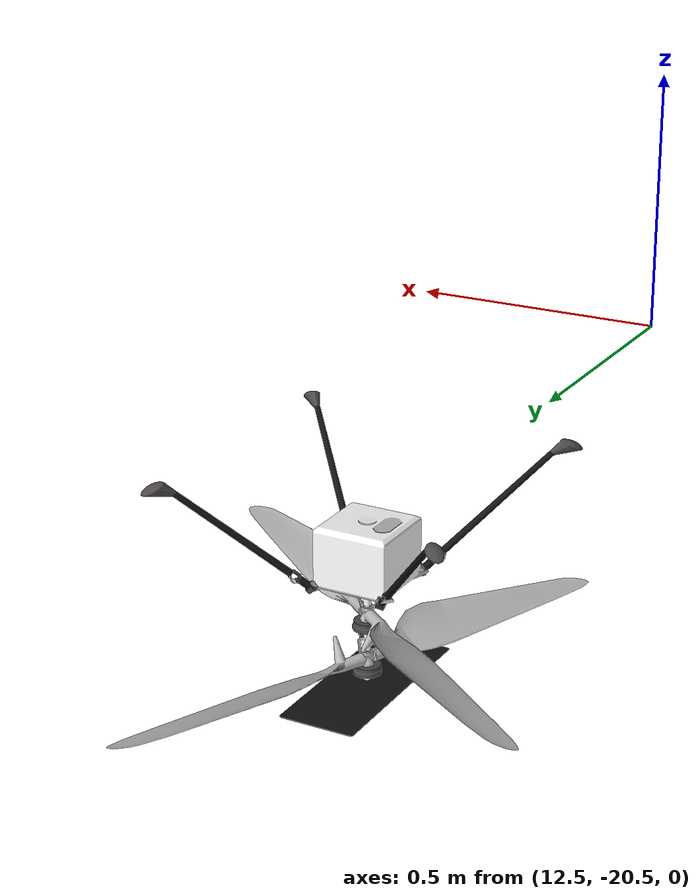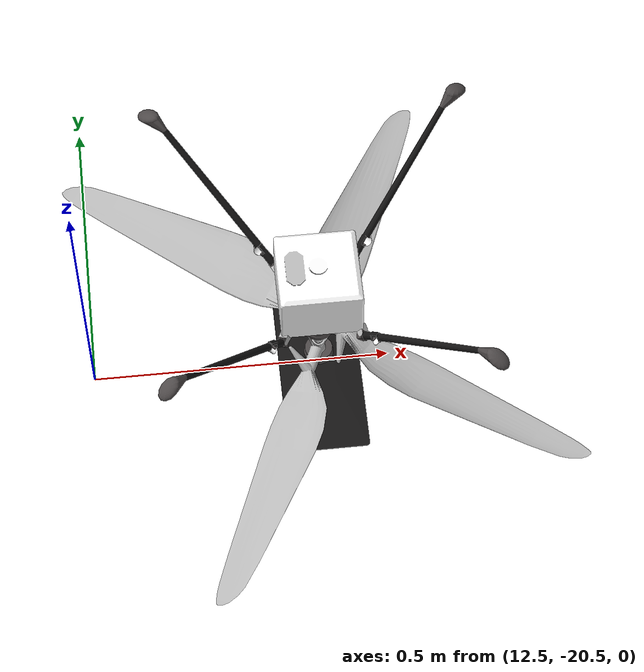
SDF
<sdf version='1.10'>
  <world name='Space'>

    <physics name='1ms' type='ode'>
      <max_step_size>0.05</max_step_size>
      <real_time_factor>1</real_time_factor>
      <real_time_update_rate>1000</real_time_update_rate>
    </physics>

    <!-- Basic Plugins -->
    <plugin name='gz::sim::systems::Physics' filename='gz-sim-physics-system'/>
    <plugin name='gz::sim::systems::UserCommands' filename='gz-sim-user-commands-system'/>
    <plugin name='gz::sim::systems::SceneBroadcaster' filename='gz-sim-scene-broadcaster-system'/>
    <plugin name='gz::sim::systems::ParticleEmitter' filename='gz-sim-particle-emitter-system'/>

    <plugin filename="gz-sim-sensors-system" name="gz::sim::systems::Sensors">
      <render_engine>ogre2</render_engine>
    </plugin>

    <!-- TODO: Set to Mars Coordinates -->
    <!-- Set the coordinates for the world origin -->

    <gui fullscreen='false'>
      <plugin name='3D View' filename='GzScene3D'>
        <gz-gui>
          <title>3D View</title>
          <property type='bool' key='showTitleBar'>false</property>
          <property type='string' key='state'>docked</property>
        </gz-gui>
        <engine>ogre2</engine>
        <ambient_light>1.0 1.0 1.0</ambient_light>
        <background_color>0.8 0.8 0.8</background_color>
        <camera_pose>0 0 5 0 0 0</camera_pose>
      </plugin>
      <plugin name='World control' filename='WorldControl'>
        <gz-gui>
          <title>World control</title>
          <property type='bool' key='showTitleBar'>false</property>
          <property type='bool' key='resizable'>false</property>
          <property type='double' key='height'>72</property>
          <property type='double' key='width'>121</property>
          <property type='double' key='z'>1</property>
          <property type='string' key='state'>floating</property>
          <anchors target='3D View'>
            <line own='left' target='left'/>
            <line own='bottom' target='bottom'/>
          </anchors>
        </gz-gui>
        <play_pause>true</play_pause>
        <step>true</step>
        <start_paused>true</start_paused>
        <service>/world/world_demo/control</service>
        <stats_topic>/world/world_demo/stats</stats_topic>
      </plugin>
      <plugin name='World stats' filename='WorldStats'>
        <gz-gui>
          <title>World stats</title>
          <property type='bool' key='showTitleBar'>false</property>
          <property type='bool' key='resizable'>false</property>
          <property type='double' key='height'>110</property>
          <property type='double' key='width'>290</property>
          <property type='double' key='z'>1</property>
          <property type='string' key='state'>floating</property>
          <anchors target='3D View'>
            <line own='right' target='right'/>
            <line own='bottom' target='bottom'/>
          </anchors>
        </gz-gui>
        <sim_time>true</sim_time>
        <real_time>true</real_time>
        <real_time_factor>true</real_time_factor>
        <iterations>true</iterations>
        <topic>/world/world_demo/stats</topic>
      </plugin>
      <plugin name='Entity tree' filename='EntityTree'/>
      <plugin name='Key publisher' filename='KeyPublisher'>
        <gz-gui>
          <anchors target='3D View'>
            <line own='right' target='right'/>
            <line own='top' target='top'/>
          </anchors>
          <property key='resizable' type='bool'>false</property>
          <property key='width' type='double'>5</property>
          <property key='height' type='double'>5</property>
          <property key='state' type='string'>floating</property>
          <property key='showTitleBar' type='bool'>false</property>
        </gz-gui>
      </plugin>
      <plugin name='Transform control' filename='TransformControl'>
        <gz-gui>
          <title>Transform control</title>
          <anchors target='3D View'>
            <line own='left' target='left'/>
            <line own='top' target='top'/>
          </anchors>
          <property key='resizable' type='bool'>false</property>
          <property key='width' type='double'>250</property>
          <property key='height' type='double'>50</property>
          <property key='state' type='string'>floating</property>
          <property key='showTitleBar' type='bool'>false</property>
          <property key='cardBackground' type='string'>#03a9f4</property>
        </gz-gui>
      </plugin>
      <camera name='user_camera'>
        <pose>0 50 50 0 0 0</pose>
        <view_controller>orbit</view_controller>
        <projection_type>perspective</projection_type>
      </camera>
    </gui>

    <gravity>0 0 -3.7</gravity>
    <magnetic_field>5.5644999999999998e-06 2.2875799999999999e-05 -4.2388400000000002e-05</magnetic_field>
    <atmosphere type='adiabatic'/>

    <scene>
      <ambient>0.400000006 0.400000006 0.400000006 1</ambient>
      <background>1 0.412 0.05 1</background>
      <shadows>true</shadows>
    </scene>

    <light type="directional" name="sun">
      <cast_shadows>true</cast_shadows>
      <pose>0 0 10 0 0 0</pose>
      <diffuse>0.8 0.8 0.8 1</diffuse>
      <specular>0.2 0.2 0.2 1</specular>
      <attenuation>
        <range>1000</range>
        <constant>0.9</constant>
        <linear>0.01</linear>
        <quadratic>0.001</quadratic>
      </attenuation>
      <direction>-0.5 0.1 -0.9</direction>
    </light>

    <model name='ground_plane'>
      <static>true</static>
      <link name='link'>
        <collision name='collision'>
          <geometry>
            <plane>
              <size>200 3500</size>
              <normal>0 0 1</normal>
            </plane>
          </geometry>
          <surface>
            <friction>
              <ode/>
            </friction>
            <bounce/>
            <contact/>
          </surface>
        </collision>
        <visual name='visual'>
          <geometry>
            <plane>
              <size>200 3500</size>
              <normal>0 0 1</normal>
            </plane>
          </geometry>
          <material>
            <ambient>0.4 0.2 0.05 1</ambient>
            <diffuse>0.4 0.2 0.05 1</diffuse>
            <specular>0.4 0.2 0.05 1</specular>
          </material>
        </visual>
        <pose>0 0 0 0 0 0</pose>
        <inertial>
          <pose>0 0 0 0 0 0</pose>
          <mass>1</mass>
          <inertia>
            <ixx>1</ixx>
            <ixy>0</ixy>
            <ixz>0</ixz>
            <iyy>1</iyy>
            <iyz>0</iyz>
            <izz>1</izz>
          </inertia>
        </inertial>
        <enable_wind>false</enable_wind>
      </link>
      <pose>0 0 0 0 0 0</pose>
      <self_collide>false</self_collide>
    </model>

    <include>
      <name>ingenuity</name>
      <uri>model://ingenuity</uri>
      <pose>12.92 -20.10 0.27 0 3.14 0</pose>
    </include>

  <plugin
      filename="DroneDust"
      name="drone_dust::DroneDust">
      <activation_distance>5</activation_distance>
      <min_distance>0.27</min_distance>
      <density_constant>12.0</density_constant>
      <model_name>ground_plane</model_name>
      <robot_name>ingenuity</robot_name>
  </plugin>

  </world>
</sdf>

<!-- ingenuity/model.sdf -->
<sdf version='1.9'>

  <model name="ingenuity">

      <enable_wind>true</enable_wind>
      <pose>0 0 0 0 0 0</pose>
      <link name="body">
        <pose>0.0 0 0.5 0 0 0</pose>
        <inertial>
          <pose>0.0 0.0 0.0 0.0 0.0 0.0</pose>
          <inertia>
            <ixx>1.8</ixx>
            <ixy>0.0</ixy>
            <ixz>0.0</ixz>
            <iyy>1.8</iyy>
            <iyz>0.0</iyz>
            <izz>1.8</izz>
          </inertia>
          <mass>10.0</mass>
        </inertial>
        <collision name="collision">
          <geometry>
            <mesh>
              <scale>1 1 1</scale>
              <uri>model://ingenuity/meshes/base_one_part.dae</uri>
            </mesh>
           </geometry>
          <surface>
            <friction>
              <ode>
                <mu>0.1</mu>
                <mu2>0.1</mu2>
              </ode>
            </friction>
          </surface>
        </collision>
        <visual name="visual">
          <geometry>
            <mesh>
              <scale>1 1 1</scale>
              <uri>model://ingenuity/meshes/base_one_part.dae</uri>
            </mesh>
           </geometry>
        </visual>
        <sensor name="altimeter" type="altimeter">
          <always_on>1</always_on>
          <update_rate>30</update_rate>
          <visualize>true</visualize>
          <topic>altimeter</topic>
          <enable_metrics>true</enable_metrics>
          <altimeter>
            <vertical_position>
              <noise type="gaussian">
                <mean>0.01</mean>
                <stddev>0.01</stddev>
              </noise>
            </vertical_position>
            <vertical_velocity>
              <noise type="gaussian">
                <mean>0.2</mean>
                <stddev>0.1</stddev>
              </noise>
            </vertical_velocity>
          </altimeter>
        </sensor>
        <sensor name="camera" type="camera">
          <pose>0 0 0 0 1.5708 0</pose>
          <camera>
            <vertical_fov>1.047</vertical_fov>
            <image>
              <width>320</width>
              <height>240</height>
              <format>R8G8B8</format>
            </image>
            <clip>
              <near>0.1</near>
              <far>100</far>
            </clip>
          </camera>
          <always_on>1</always_on>
          <update_rate>30</update_rate>
          <visualize>true</visualize>
          <topic>camera</topic>
        </sensor>
          <sensor name="imu" type="imu">
          <always_on>1</always_on>
          <update_rate>100</update_rate>
          <visualize>true</visualize>
          <topic>imu</topic>
          <enable_metrics>true</enable_metrics>
        </sensor>
      </link>

      <link name="rod_1">
        <pose>0 0 1.25 0 0 0</pose>
        <inertial>
          <pose>0.0 0.0 0 0.0 0.0 0.0</pose>
          <inertia>
            <ixx>0.012</ixx>
            <ixy>0.0</ixy>
            <ixz>0.0</ixz>
            <iyy>0.012</iyy>
            <iyz>0.0</iyz>
            <izz>0.0012</izz>
          </inertia>
          <mass>1.0</mass>
        </inertial>
        <collision name="collision">
          <geometry>
            <box>
              <size>0.02 0.02 0.5</size>
            </box>
          </geometry>
        </collision>
        <visual name="visual">
          <pose> 0 0 -0.75 0 0 0</pose>
          <geometry>
            <mesh>
              <scale>1 1 1</scale>
              <uri>model://ingenuity/meshes/rotor_blade_bottom.dae</uri>
            </mesh>
           </geometry>
        </visual>
      </link>
      <link name="blade_1">
        <pose>0 0 1.5 0.0 0 0</pose>
        <inertial>
          <pose>0.0 0.5 0 0.0 0.0 0.0</pose>
          <inertia>
            <ixx>0.0000465</ixx>
            <ixy>0.0</ixy>
            <ixz>0.0</ixz>
            <iyy>0.0000006</iyy>
            <iyz>0.0</iyz>
            <izz>0.0000470</izz>
          </inertia>
          <mass>0.01</mass>
        </inertial>
        <collision name="collision">
          <pose>0.0 0.5 0 0.0 0.0 0.0</pose>
          <geometry>
            <box>
              <size>0.2 1.0 0.01</size>
            </box>
          </geometry>
        </collision>

      </link>
      <link name="blade_2">
        <pose>0 0 1.5 0.0 0 3.141593</pose>
        <inertial>
          <pose>0.0 0.5 0 0.0 0.0 0.0</pose>
          <inertia>
            <ixx>0.0000465</ixx>
            <ixy>0.0</ixy>
            <ixz>0.0</ixz>
            <iyy>0.0000006</iyy>
            <iyz>0.0</iyz>
            <izz>0.0000470</izz>
          </inertia>
          <mass>0.01</mass>
        </inertial>
        <collision name="collision">
          <pose>0.0 0.5 0 0.0 0.0 0.0</pose>
          <geometry>
            <box>
              <size>0.2 1.0 0.01</size>
            </box>
          </geometry>
        </collision>
      </link>
      <joint name="rod_1_joint" type="revolute">
        <parent>body</parent>
        <child>rod_1</child>
        <pose>0.0 0.0 0.0 0.0 0.0 0.0</pose>
        <axis>
          <limit>
            <lower>-1e16</lower>
            <upper>1e16</upper>
          </limit>
          <xyz>0.0 0.0 -1.0</xyz>
          <dynamics>
            <damping>0.0001</damping>
            <friction>0.1</friction>
          </dynamics>
        </axis>
        <physics>
          <ode>
            <cfm_damping>1</cfm_damping>
          </ode>
        </physics>
      </joint>
      <joint name="blade_1_joint" type="fixed">
        <parent>rod_1</parent>
        <child>blade_1</child>
        <pose>0.0 -0.5 0.0 0.0 0.0 0.0</pose>
      </joint>
      <joint name="blade_2_joint" type="fixed">
        <parent>rod_1</parent>
        <child>blade_2</child>
        <pose>0.0 0.5 0.0 0.0 0.0 0.0</pose>
      </joint>

     <!-- New Rod 2 -->
      <link name="rod_2">
        <pose>0 0 1.75 0 0 0</pose> <!-- Positioned above Rod 1 -->
        <inertial>
          <pose>0.0 0.0 0 0.0 0.0 0.0</pose>
          <inertia>
            <ixx>0.012</ixx>
            <ixy>0.0</ixy>
            <ixz>0.0</ixz>
            <iyy>0.012</iyy>
            <iyz>0.0</iyz>
            <izz>0.0012</izz>
          </inertia>
          <mass>1.0</mass>
        </inertial>
        <collision name="collision">
          <geometry>
            <box>
              <size>0.02 0.02 0.5</size>
            </box>
          </geometry>
        </collision>
        <visual name="visual">
          <pose> 0 0 -1.25 0 0 0 </pose>

          <geometry>
            <mesh>
              <scale>1 1 1</scale>
              <uri>model://ingenuity/meshes/rotor_blade_top.dae</uri>
            </mesh>
           </geometry>

        </visual>
      </link>

      <link name="solar_panel">
       <pose>0 0 0.5 0 0 0</pose>
          <visual name="visual">
          <geometry>
            <mesh>
              <scale>1 1 1</scale>
              <uri>model://ingenuity/meshes/solar_panel_one_part.dae</uri>
            </mesh>
           </geometry>
        </visual>
      </link>

      <!-- New Blade 3 -->
      <link name="blade_3">
        <pose>0 0 2.0 0.0 0 0</pose>
        <inertial>
          <pose>0.0 0.5 0 0.0 0.0 0.0</pose>
          <inertia>
            <ixx>0.0000465</ixx>
            <ixy>0.0</ixy>
            <ixz>0.0</ixz>
            <iyy>0.0000006</iyy>
            <iyz>0.0</iyz>
            <izz>0.0000470</izz>
          </inertia>
          <mass>0.01</mass>
        </inertial>
        <collision name="collision">
          <pose>0.0 0.5 0 0.0 0.0 0.0</pose>
          <geometry>
            <box>
              <size>0.2 1.0 0.01</size>
            </box>
          </geometry>
        </collision>

      </link>

      <!-- New Blade 4 -->
      <link name="blade_4">
        <pose>0 0 2.0 0.0 0 3.141593</pose>
        <inertial>
          <pose>0.0 0.5 0 0.0 0.0 0.0</pose>
          <inertia>
            <ixx>0.0000465</ixx>
            <ixy>0.0</ixy>
            <ixz>0.0</ixz>
            <iyy>0.0000006</iyy>
            <iyz>0.0</iyz>
            <izz>0.0000470</izz>
          </inertia>
          <mass>0.01</mass>
        </inertial>
        <collision name="collision">
          <pose>0.0 0.5 0 0.0 0.0 0.0</pose>
          <geometry>
            <box>
              <size>0.2 1.0 0.01</size>
            </box>
          </geometry>
        </collision>

      </link>

      <!-- Rod 2 Joint -->
      <joint name="rod_2_joint" type="revolute">
        <parent>body</parent>
        <child>rod_2</child>
        <pose>0.0 0.0 0.0 0.0 0.0 0.0</pose>
        <axis>
          <limit>
            <lower>-1e16</lower>
            <upper>1e16</upper>
          </limit>
          <xyz>0.0 0.0 1.0</xyz> <!-- Opposite to Rod 1 -->
          <dynamics>
            <damping>0.0001</damping>
            <friction>0.1</friction>
          </dynamics>
        </axis>
        <physics>
          <ode>
            <cfm_damping>1</cfm_damping>
          </ode>
        </physics>
      </joint>

      <!-- Blade 3 Joint -->
      <joint name="blade_3_joint" type="fixed">
        <parent>rod_2</parent>
        <child>blade_3</child>
        <pose>0.0 0.0 0.0 0.0 0.0 0.0</pose>
      </joint>

      <!-- Blade 4 Joint -->
      <joint name="blade_4_joint" type="fixed">
        <parent>rod_2</parent>
        <child>blade_4</child>
        <pose>0.0 0.0 0.0 0.0 0.0 0.0</pose>
      </joint>

      <joint name="solar_panel_joint" type="fixed">
        <parent>body</parent>
        <child>solar_panel</child>
        <pose>0 0 0 0 0 0</pose>
      </joint>

      <!-- Plugins for new blades -->
      <plugin
        filename="helicopter_flight_simulation"
        name="gz::sim::systems::HelicopterFlightSimulation">
        <a0>0.1</a0>
        <cla>0.1</cla>
        <cda>0.001</cda>
        <cma>0.0</cma>
        <cp>0.0 0.5 0</cp>
        <area>0.2</area>
        <air_density>0.024082</air_density>
        <forward>1 0 0</forward>
        <upward>0 0 -1</upward>
        <link_name>blade_3</link_name>
      </plugin>
      <plugin
        filename="helicopter_flight_simulation"
        name="gz::sim::systems::HelicopterFlightSimulation">
        <a0>0.1</a0>
        <cla>0.1</cla>
        <cda>0.001</cda>
        <cma>0.0</cma>
        <cp>0.0 0.5 0</cp>
        <area>0.2</area>
        <air_density>0.024082</air_density>
        <forward>1 0 0</forward>
        <upward>0 0 -1</upward>
        <link_name>blade_4</link_name>
      </plugin>

      <plugin
        filename="gz-sim-joint-state-publisher-system"
        name="gz::sim::systems::JointStatePublisher">
        <joint_name>rod_1_joint</joint_name>
        <joint_name>rod_2_joint</joint_name>
      </plugin>

      <plugin
        filename="helicopter_flight_simulation"
        name="gz::sim::systems::HelicopterFlightSimulation">
        <a0>0.1</a0>
        <cla>0.1</cla>
        <cda>0.001</cda>
        <cma>0.0</cma>
        <cp>0.0 0.5 0</cp>
        <area>0.2</area>
        <air_density>0.024082</air_density>
        <forward>1 0 0</forward>
        <upward>0 0 1</upward>
        <link_name>blade_1</link_name>
      </plugin>
      <plugin
        filename="helicopter_flight_simulation"
        name="gz::sim::systems::HelicopterFlightSimulation">
        <a0>0.1</a0>
        <cla>0.1</cla>
        <cda>0.001</cda>
        <cma>0.0</cma>
        <cp>0.0 0.5 0</cp>
        <area>0.2</area>
        <air_density>0.024082</air_density>
        <forward>1 0 0</forward>
        <upward>0 0 1</upward>
        <link_name>blade_2</link_name>
      </plugin>

    <plugin
      filename="gz-sim-joint-controller-system"
      name="gz::sim::systems::JointController">
      <joint_name>rod_1_joint</joint_name>
      <use_force_commands>true</use_force_commands>
      <p_gain>1.0</p_gain>
      <i_gain>0.1</i_gain>
      <d_gain>0.0</d_gain>
      <initial_velocity>2000.0</initial_velocity>
    </plugin>

    <plugin
      filename="gz-sim-joint-controller-system"
      name="gz::sim::systems::JointController">
      <joint_name>rod_2_joint</joint_name>
      <use_force_commands>true</use_force_commands>
      <p_gain>1.0</p_gain>
      <i_gain>0.1</i_gain>
      <d_gain>0.0</d_gain>
      <initial_velocity>2000.0</initial_velocity>
    </plugin>

    <plugin
        filename="gz-sim-pose-publisher-system"
        name="gz::sim::systems::PosePublisher">
      <use_pose_vector_msg>true</use_pose_vector_msg>
      <publish_nested_model_pose>true</publish_nested_model_pose>
    </plugin>

    <plugin name="gz::sim::systems::HelicopterControl" filename="helicopter_flight_control">
      <kp_alt>0.027</kp_alt>
      <ki_alt>0.0005</ki_alt>
      <kd_alt>0.1</kd_alt>
      <desired_altitude>10.0</desired_altitude>
      <link_name>body</link_name>
    </plugin>

    <plugin filename="gz-sim-linearbatteryplugin-system"
      name="gz::sim::systems::LinearBatteryPlugin">
      <battery_name>ingenuity_battery</battery_name>
      <voltage>4.2</voltage>
      <open_circuit_voltage_constant_coef>4.2</open_circuit_voltage_constant_coef>
      <open_circuit_voltage_linear_coef>-2.0</open_circuit_voltage_linear_coef>
      <initial_charge>2.5</initial_charge>
      <capacity>2.5 </capacity>
      <resistance>0.07</resistance>
      <smooth_current_tau>2.0</smooth_current_tau>
      <enable_recharge>true</enable_recharge>
      <charging_time>3.0</charging_time>
      <power_load>2.1</power_load>
      <start_on_motion>true</start_on_motion>
      <fix_issue_225>true</fix_issue_225>
    </plugin>

    </model>

</sdf>
